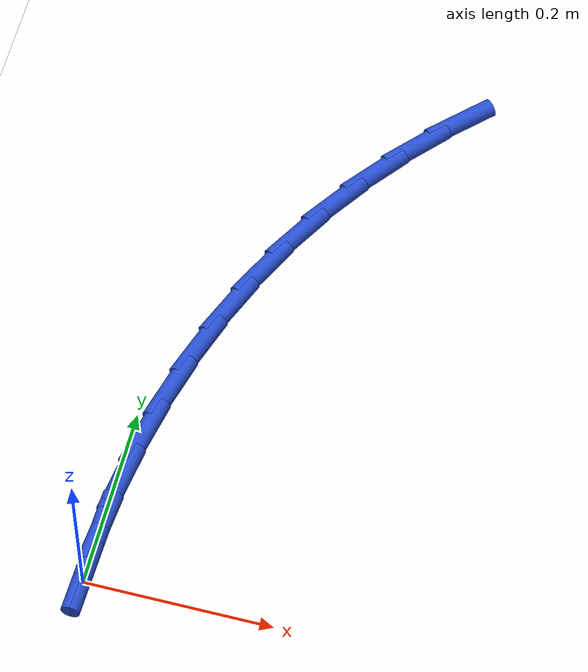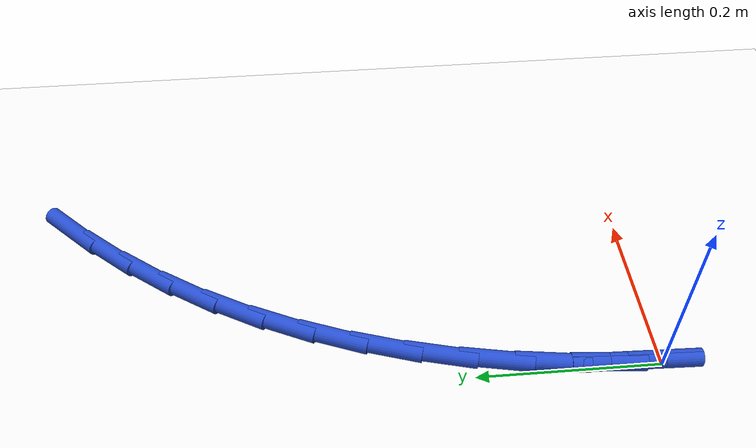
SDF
<sdf version="1.6">
 <world name="default">
  <model name="ground_plane">
   <static>1</static>
   <link name="link">
    <collision name="collision">
     <geometry><plane><normal>0 0 1</normal><size>100 100</size></plane></geometry>
     <surface><friction><ode><mu>100</mu><mu2>50</mu2></ode></friction></surface>
    </collision>
    <visual name="visual">
     <cast_shadows>0</cast_shadows>
     <geometry><plane><normal>0 0 1</normal><size>100 100</size></plane></geometry>
     <material>
      <script><uri>file://media/materials/scripts/gazebo.material</uri><name>Gazebo/WhiteGlow</name></script>
     </material>
    </visual>
   </link>
  </model>
  <model name="line">
   <link name="link_0">
    <pose>-6.765421556309548e-17 5.551115123125783e-17 0.01 0 1.57 1.5435324797993135</pose>
    <collision name="collision">
     <geometry><cylinder><radius>0.01</radius><length>0.08</length></cylinder></geometry>
    </collision>
    <visual name="visual">
     <material>
      <script><name>Gazebo/Blue</name><uri>file://media/materials/scripts/gazebo.material</uri></script>
     </material>
     <geometry><cylinder><radius>0.01</radius><length>0.08</length></cylinder></geometry>
    </visual>
   </link>
   <link name="link_1">
    <pose>0.0016117935138663113 0.05910369641916702 0.01 0 1.57 1.4882204712097102</pose>
    <collision name="collision">
     <geometry><cylinder><radius>0.01</radius><length>0.08</length></cylinder></geometry>
    </collision>
    <visual name="visual">
     <material>
      <script><name>Gazebo/Blue</name><uri>file://media/materials/scripts/gazebo.material</uri></script>
     </material>
     <geometry><cylinder><radius>0.01</radius><length>0.08</length></cylinder></geometry>
    </visual>
   </link>
   <link name="link_2">
    <pose>0.006481556532495397 0.11794280075773003 0.01 0 1.57 1.4316946404309912</pose>
    <collision name="collision">
     <geometry><cylinder><radius>0.01</radius><length>0.08</length></cylinder></geometry>
    </collision>
    <visual name="visual">
     <material>
      <script><name>Gazebo/Blue</name><uri>file://media/materials/scripts/gazebo.material</uri></script>
     </material>
     <geometry><cylinder><radius>0.01</radius><length>0.08</length></cylinder></geometry>
    </visual>
   </link>
   <link name="link_3">
    <pose>0.014647811916413074 0.1762707559628963 0.01 0 1.57 1.3736142141886283</pose>
    <collision name="collision">
     <geometry><cylinder><radius>0.01</radius><length>0.08</length></cylinder></geometry>
    </collision>
    <visual name="visual">
     <material>
      <script><name>Gazebo/Blue</name><uri>file://media/materials/scripts/gazebo.material</uri></script>
     </material>
     <geometry><cylinder><radius>0.01</radius><length>0.08</length></cylinder></geometry>
    </visual>
   </link>
   <link name="link_4">
    <pose>0.026149082526145163 0.23384100498187269 0.01 0 1.57 1.313654109196989</pose>
    <collision name="collision">
     <geometry><cylinder><radius>0.01</radius><length>0.08</length></cylinder></geometry>
    </collision>
    <visual name="visual">
     <material>
      <script><name>Gazebo/Blue</name><uri>file://media/materials/scripts/gazebo.material</uri></script>
     </material>
     <geometry><cylinder><radius>0.01</radius><length>0.08</length></cylinder></geometry>
    </visual>
   </link>
   <link name="link_5">
    <pose>0.04102389122221753 0.2904069907618664 0.01 0 1.57 1.2515130676223674</pose>
    <collision name="collision">
     <geometry><cylinder><radius>0.01</radius><length>0.08</length></cylinder></geometry>
    </collision>
    <visual name="visual">
     <material>
      <script><name>Gazebo/Blue</name><uri>file://media/materials/scripts/gazebo.material</uri></script>
     </material>
     <geometry><cylinder><radius>0.01</radius><length>0.08</length></cylinder></geometry>
    </visual>
   </link>
   <link name="link_6">
    <pose>0.05931076086515607 0.3457221562500846 0.01 0 1.57 1.1869252387489635</pose>
    <collision name="collision">
     <geometry><cylinder><radius>0.01</radius><length>0.08</length></cylinder></geometry>
    </collision>
    <visual name="visual">
     <material>
      <script><name>Gazebo/Blue</name><uri>file://media/materials/scripts/gazebo.material</uri></script>
     </material>
     <geometry><cylinder><radius>0.01</radius><length>0.08</length></cylinder></geometry>
    </visual>
   </link>
   <link name="link_7">
    <pose>0.08104821431548659 0.3995399443937341 0.01 0 1.57 1.1196755422001141</pose>
    <collision name="collision">
     <geometry><cylinder><radius>0.01</radius><length>0.08</length></cylinder></geometry>
    </collision>
    <visual name="visual">
     <material>
      <script><name>Gazebo/Blue</name><uri>file://media/materials/scripts/gazebo.material</uri></script>
     </material>
     <geometry><cylinder><radius>0.01</radius><length>0.08</length></cylinder></geometry>
    </visual>
   </link>
   <link name="link_8">
    <pose>0.10627477443373493 0.45161379814002217 0.01 0 1.57 1.0496187371121688</pose>
    <collision name="collision">
     <geometry><cylinder><radius>0.01</radius><length>0.08</length></cylinder></geometry>
    </collision>
    <visual name="visual">
     <material>
      <script><name>Gazebo/Blue</name><uri>file://media/materials/scripts/gazebo.material</uri></script>
     </material>
     <geometry><cylinder><radius>0.01</radius><length>0.08</length></cylinder></geometry>
    </visual>
   </link>
   <link name="link_9">
    <pose>0.13502896199174266 0.5016971621489793 0.01 0 1.57 0.9779457021009219</pose>
    <collision name="collision">
     <geometry><cylinder><radius>0.01</radius><length>0.08</length></cylinder></geometry>
    </collision>
    <visual name="visual">
     <material>
      <script><name>Gazebo/Blue</name><uri>file://media/materials/scripts/gazebo.material</uri></script>
     </material>
     <geometry><cylinder><radius>0.01</radius><length>0.08</length></cylinder></geometry>
    </visual>
   </link>
   <link name="link_10">
    <pose>0.16729348475975128 0.5495892504729106 0.01 0 1.57 0.9092209743055599</pose>
    <collision name="collision">
     <geometry><cylinder><radius>0.01</radius><length>0.08</length></cylinder></geometry>
    </collision>
    <visual name="visual">
     <material>
      <script><name>Gazebo/Blue</name><uri>file://media/materials/scripts/gazebo.material</uri></script>
     </material>
     <geometry><cylinder><radius>0.01</radius><length>0.08</length></cylinder></geometry>
    </visual>
   </link>
   <link name="link_11">
    <pose>0.2028497846525684 0.5952543250136347 0.01 0 1.57 0.8445236114350971</pose>
    <collision name="collision">
     <geometry><cylinder><radius>0.01</radius><length>0.08</length></cylinder></geometry>
    </collision>
    <visual name="visual">
     <material>
      <script><name>Gazebo/Blue</name><uri>file://media/materials/scripts/gazebo.material</uri></script>
     </material>
     <geometry><cylinder><radius>0.01</radius><length>0.08</length></cylinder></geometry>
    </visual>
   </link>
   <link name="link_12">
    <pose>0.2414339519169481 0.6386938382598568 0.01 0 1.57 0.7837906700036877</pose>
    <collision name="collision">
     <geometry><cylinder><radius>0.01</radius><length>0.08</length></cylinder></geometry>
    </collision>
    <visual name="visual">
     <material>
      <script><name>Gazebo/Blue</name><uri>file://media/materials/scripts/gazebo.material</uri></script>
     </material>
     <geometry><cylinder><radius>0.01</radius><length>0.08</length></cylinder></geometry>
    </visual>
   </link>
   <link name="link_120">
    <pose>-6.245004513516506e-17 1.3877787807814457e-17 0.01 0 1.57 1.5437468307534776</pose>
    <collision name="collision">
     <geometry><cylinder><radius>0.01</radius><length>0.08</length></cylinder></geometry>
    </collision>
    <visual name="visual">
     <material>
      <script><name>Gazebo/Blue</name><uri>file://media/materials/scripts/gazebo.material</uri></script>
     </material>
     <geometry><cylinder><radius>0.01</radius><length>0.08</length></cylinder></geometry>
    </visual>
   </link>
   <link name="link_121">
    <pose>0.0015990608055944065 0.0591016847926091 0.01 0 1.57 1.5437468307534774</pose>
    <collision name="collision">
     <geometry><cylinder><radius>0.01</radius><length>0.08</length></cylinder></geometry>
    </collision>
    <visual name="visual">
     <material>
      <script><name>Gazebo/Blue</name><uri>file://media/materials/scripts/gazebo.material</uri></script>
     </material>
     <geometry><cylinder><radius>0.01</radius><length>0.08</length></cylinder></geometry>
    </visual>
   </link>
  </model>
 </world>
</sdf>
